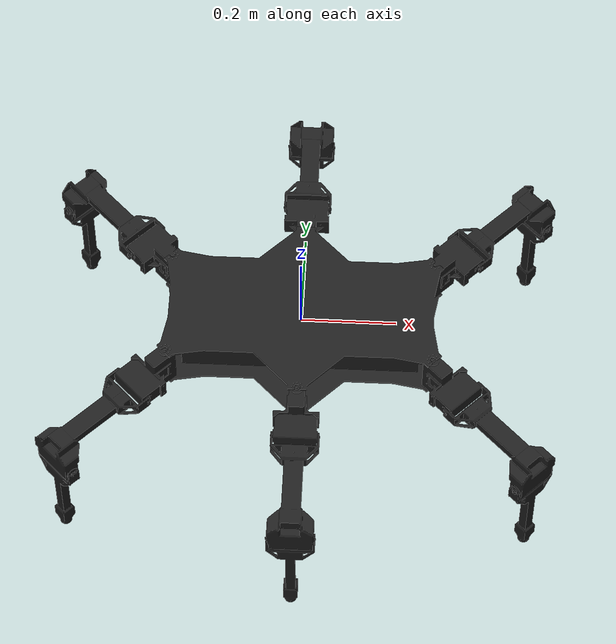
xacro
<?xml version="1.0"?>
<robot name="alpha" xmlns:xacro="http://ros.org/wiki/xacro">

  <xacro:arg name="robot_name" default = "alpha"/>
  <xacro:arg name="external_urdf_loc" default=""/>
  <xacro:arg name="load_gazebo_configs" default="false"/>

  <xacro:property name="urdf_loc" value="$(arg external_urdf_loc)"/>

  <xacro:if value="$(arg load_gazebo_configs)">
    <xacro:include filename="$(find interbotix_xshexapod_gazebo)/config/interbotix_texture.gazebo"/>
  </xacro:if>

  <material name="interbotix_black">
    <texture filename="package://interbotix_xshexapod_descriptions/meshes/interbotix_black.png"/>
  </material>

  <xacro:macro name="leg" params="robot_name prefix x y yaw">

    <joint name="${prefix}_coxa" type="revolute">
      <axis xyz="0 0 1"/>
      <limit effort="100" lower="${radians(-70)}" upper="${radians(70)}" velocity="${pi}"/>
      <origin rpy="0 0 ${yaw}" xyz="${x} ${y} 0"/>
      <parent link="${robot_name}/base_link"/>
      <child link="${robot_name}/${prefix}_coxa_link"/>
    </joint>

    <link name="${robot_name}/${prefix}_coxa_link">
      <visual>
        <origin rpy="0 0 0" xyz="0 0 0"/>
        <geometry>
          <mesh filename="package://interbotix_xshexapod_descriptions/meshes/alpha_meshes/alpha_coxa_link.stl" scale="0.001 0.001 0.001"/>
        </geometry>
        <material name="interbotix_black"/>
      </visual>
      <collision>
        <origin rpy="0 0 0" xyz="0 0 0"/>
        <geometry>
          <mesh filename="package://interbotix_xshexapod_descriptions/meshes/alpha_meshes/alpha_coxa_link.stl" scale="0.001 0.001 0.001"/>
        </geometry>
      </collision>
      <inertial>
        <origin rpy="0 0 0" xyz="0.026453 0 0"/>
        <mass value="0.1" />
        <inertia ixx="0.002" iyy="0.002" izz="0.002" ixy="0" ixz="0" iyz="0" />
      </inertial>
    </link>

    <joint name="${prefix}_femur" type="revolute">
      <axis xyz="0 1 0"/>
      <limit effort="100" lower="${radians(-100)}" upper="${radians(100)}" velocity="${pi}"/>
      <origin rpy="0 0 0" xyz="0.09 0 0"/>
      <parent link="${robot_name}/${prefix}_coxa_link"/>
      <child link="${robot_name}/${prefix}_femur_link"/>
    </joint>

    <link name="${robot_name}/${prefix}_femur_link">
      <visual>
        <origin rpy="0 0 0" xyz="0 0 0"/>
        <geometry>
          <mesh filename="package://interbotix_xshexapod_descriptions/meshes/alpha_meshes/alpha_femur_link.stl" scale="0.001 0.001 0.001"/>
        </geometry>
        <material name="interbotix_black"/>
      </visual>
      <collision>
        <origin rpy="0 0 0" xyz="0 0 0"/>
        <geometry>
          <mesh filename="package://interbotix_xshexapod_descriptions/meshes/alpha_meshes/alpha_femur_link.stl" scale="0.001 0.001 0.001"/>
        </geometry>
      </collision>
      <inertial>
        <origin rpy="0 0 0" xyz="0.026453 0 0"/>
        <mass value="0.1" />
        <inertia ixx="0.002" iyy="0.002" izz="0.002" ixy="0" ixz="0" iyz="0" />
      </inertial>
    </link>

    <joint name="${prefix}_tibia" type="revolute">
      <axis xyz="0 1 0"/>
      <limit effort="100" lower="${radians(-90)}" upper="${radians(90)}" velocity="${pi}"/>
      <origin rpy="0 0 0" xyz="0.21 0 -0.05865"/>
      <parent link="${robot_name}/${prefix}_femur_link"/>
      <child link="${robot_name}/${prefix}_tibia_link"/>
    </joint>

    <link name="${robot_name}/${prefix}_tibia_link">
      <visual>
        <origin rpy="0 0 0" xyz="0 0 0"/>
        <geometry>
          <mesh filename="package://interbotix_xshexapod_descriptions/meshes/alpha_meshes/alpha_tibia_link.stl" scale="0.001 0.001 0.001"/>
        </geometry>
        <material name="interbotix_black"/>
      </visual>
      <collision>
        <origin rpy="0 0 0" xyz="0 0 0"/>
        <geometry>
          <mesh filename="package://interbotix_xshexapod_descriptions/meshes/alpha_meshes/alpha_tibia_link.stl" scale="0.001 0.001 0.001"/>
        </geometry>
      </collision>
      <inertial>
        <origin rpy="0 0 0" xyz="0.026453 0 0"/>
        <mass value="0.1" />
        <inertia ixx="0.002" iyy="0.002" izz="0.002" ixy="0" ixz="0" iyz="0" />
      </inertial>
    </link>

    <joint name="${prefix}_foot" type="fixed">
      <origin rpy="0 0 0" xyz="0 0 -0.26"/>
      <parent link="${robot_name}/${prefix}_tibia_link"/>
      <child link="${robot_name}/${prefix}_foot_link"/>
    </joint>

    <link name="${robot_name}/${prefix}_foot_link"/>

  </xacro:macro>

  <link name="$(arg robot_name)/base_link">
    <visual>
      <origin rpy="0 0 0" xyz="0 0 0"/>
      <geometry>
        <mesh filename="package://interbotix_xshexapod_descriptions/meshes/alpha_meshes/alpha_base_link.stl" scale="0.001 0.001 0.001"/>
      </geometry>
      <material name="interbotix_black"/>
    </visual>
    <collision>
      <origin rpy="0 0 0" xyz="0 0 0"/>
      <geometry>
        <mesh filename="package://interbotix_xshexapod_descriptions/meshes/alpha_meshes/alpha_base_link.stl" scale="0.001 0.001 0.001"/>
      </geometry>
    </collision>
    <inertial>
      <origin rpy="0 0 0" xyz="0 0 0.02"/>
      <mass value="0.5" />
      <inertia ixx="0.002" iyy="0.002" izz="0.002" ixy="0" ixz="0" iyz="0" />
    </inertial>
  </link>

  <joint name="base_bottom" type="fixed">
    <origin rpy="0 0 0" xyz="0 0 -0.05065"/>
    <parent link="$(arg robot_name)/base_link"/>
    <child link="$(arg robot_name)/base_bottom_link"/>
  </joint>

  <link name="$(arg robot_name)/base_bottom_link">
  </link>

  <xacro:leg robot_name="$(arg robot_name)" prefix="right_front" x="0.28" y="-0.12" yaw="${-pi/4}"/>
  <xacro:leg robot_name="$(arg robot_name)" prefix="right_middle" x="0" y="-0.2" yaw="${-pi/2}"/>
  <xacro:leg robot_name="$(arg robot_name)" prefix="right_back" x="-0.28" y="-0.12" yaw="${-3*pi/4}"/>
  <xacro:leg robot_name="$(arg robot_name)" prefix="left_front" x="0.28" y="0.12" yaw="${pi/4}"/>
  <xacro:leg robot_name="$(arg robot_name)" prefix="left_middle" x="0" y="0.2" yaw="${pi/2}"/>
  <xacro:leg robot_name="$(arg robot_name)" prefix="left_back" x="-0.28" y="0.12" yaw="${3*pi/4}"/>

  <xacro:if value="${urdf_loc != ''}">
    <xacro:include filename="${urdf_loc}"/>
  </xacro:if>

</robot>
